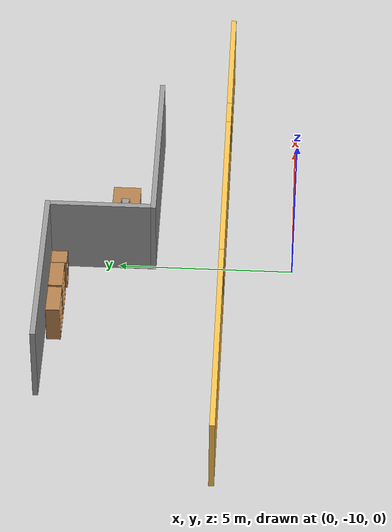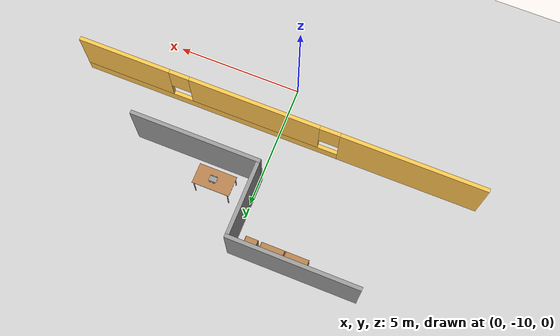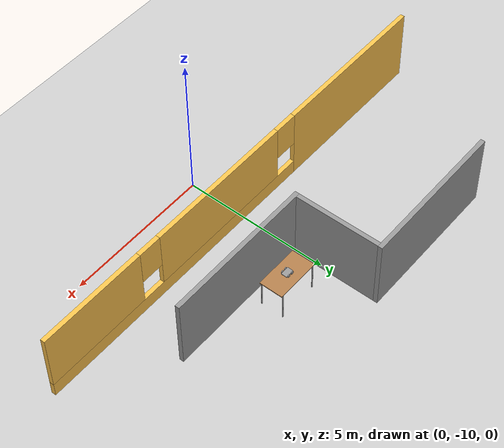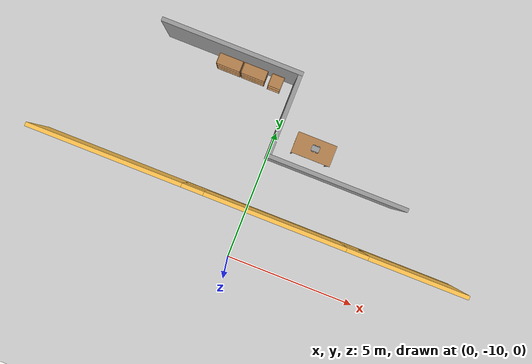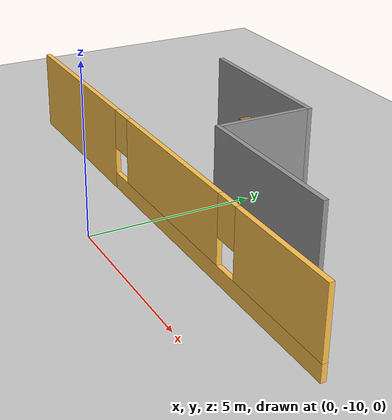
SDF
<sdf version="1.7">
 <world name="default">
  <model name="ground_plane">
   <static>1</static>
   <link name="link">
    <collision name="collision">
     <geometry><plane><normal>0 0 1</normal><size>100 100</size></plane></geometry>
     <surface><friction><ode><mu>100</mu><mu2>50</mu2></ode></friction></surface>
    </collision>
    <visual name="visual">
     <cast_shadows>0</cast_shadows>
     <geometry><plane><normal>0 0 1</normal><size>100 100</size></plane></geometry>
     <material>
      <script><uri>file://media/materials/scripts/gazebo.material</uri><name>Gazebo/Grey</name></script>
     </material>
    </visual>
   </link>
  </model>
  <model name="basic_office">
   <link name="Wall_20">
    <pose>0 -8 0 0 -0 0</pose>
    <visual name="Wall_20_Visual_0">
     <pose>-5.2375 0 1.25 0 -0 0</pose>
     <geometry><box><size>5.675 0.15 2.5</size></box></geometry>
     <material>
      <script><uri>file://media/materials/scripts/gazebo.material</uri><name>Gazebo/Grey</name></script>
      <ambient>1 0.764706 0.305882 1</ambient>
      <shader type="pixel"/>
     </material>
     <meta><layer>0</layer></meta>
    </visual>
    <visual name="Wall_20_Visual_2">
     <pose>1.00413 0 1.5 0 -0 0</pose>
     <geometry><box><size>5.20827 0.15 2</size></box></geometry>
     <material>
      <script><uri>file://media/materials/scripts/gazebo.material</uri><name>Gazebo/Grey</name></script>
      <ambient>1 0.764706 0.305882 1</ambient>
      <shader type="pixel"/>
     </material>
     <meta><layer>0</layer></meta>
    </visual>
    <visual name="Wall_20_Visual_1">
     <pose>2.8375 0 0.25 0 -0 0</pose>
     <geometry><box><size>10.475 0.15 0.5</size></box></geometry>
     <material>
      <script><uri>file://media/materials/scripts/gazebo.material</uri><name>Gazebo/Grey</name></script>
      <ambient>1 0.764706 0.305882 1</ambient>
      <shader type="pixel"/>
     </material>
     <meta><layer>0</layer></meta>
    </visual>
    <visual name="Wall_20_Visual_4">
     <pose>-2 0 1.9 0 -0 0</pose>
     <geometry><box><size>0.8 0.15 1.2</size></box></geometry>
     <material>
      <script><uri>file://media/materials/scripts/gazebo.material</uri><name>Gazebo/Grey</name></script>
      <ambient>1 0.764706 0.305882 1</ambient>
      <shader type="pixel"/>
     </material>
     <meta><layer>0</layer></meta>
    </visual>
    <visual name="Wall_20_Visual_3">
     <pose>6.24163 0 1.5 0 -0 0</pose>
     <geometry><box><size>3.66673 0.15 2</size></box></geometry>
     <material>
      <script><uri>file://media/materials/scripts/gazebo.material</uri><name>Gazebo/Grey</name></script>
      <ambient>1 0.764706 0.305882 1</ambient>
      <shader type="pixel"/>
     </material>
     <meta><layer>0</layer></meta>
    </visual>
    <visual name="Wall_20_Visual_5">
     <pose>4.00827 0 1.9 0 -0 0</pose>
     <geometry><box><size>0.8 0.15 1.2</size></box></geometry>
     <material>
      <script><uri>file://media/materials/scripts/gazebo.material</uri><name>Gazebo/Grey</name></script>
      <ambient>1 0.764706 0.305882 1</ambient>
      <shader type="pixel"/>
     </material>
     <meta><layer>0</layer></meta>
    </visual>
    <collision name="Wall_20_Collision_3">
     <pose>6.24163 0 1.5 0 -0 0</pose>
     <geometry><box><size>3.66673 0.15 2</size></box></geometry>
     <surface>
      <friction>
       <ode><mu>1</mu><mu2>1</mu2><fdir1>0 0 0</fdir1><slip1>0</slip1><slip2>0</slip2></ode>
       <torsional>
        <coefficient>1</coefficient>
        <patch_radius>0</patch_radius>
        <surface_radius>0</surface_radius>
        <use_patch_radius>1</use_patch_radius>
        <ode><slip>0</slip></ode>
       </torsional>
      </friction>
      <bounce><restitution_coefficient>0</restitution_coefficient><threshold>1e+06</threshold></bounce>
      <contact>
       <collide_without_contact>0</collide_without_contact>
       <collide_without_contact_bitmask>1</collide_without_contact_bitmask>
       <collide_bitmask>1</collide_bitmask>
       <ode>
        <soft_cfm>0</soft_cfm>
        <soft_erp>0.2</soft_erp>
        <kp>1e+13</kp>
        <kd>1</kd>
        <max_vel>0.01</max_vel>
        <min_depth>0</min_depth>
       </ode>
       <bullet>
        <split_impulse>1</split_impulse>
        <split_impulse_penetration_threshold>-0.01</split_impulse_penetration_threshold>
        <soft_cfm>0</soft_cfm>
        <soft_erp>0.2</soft_erp>
        <kp>1e+13</kp>
        <kd>1</kd>
       </bullet>
      </contact>
     </surface>
    </collision>
    <collision name="Wall_20_Collision_4">
     <pose>-2 0 1.9 0 -0 0</pose>
     <geometry><box><size>0.8 0.15 1.2</size></box></geometry>
     <surface>
      <friction>
       <ode><mu>1</mu><mu2>1</mu2><fdir1>0 0 0</fdir1><slip1>0</slip1><slip2>0</slip2></ode>
       <torsional>
        <coefficient>1</coefficient>
        <patch_radius>0</patch_radius>
        <surface_radius>0</surface_radius>
        <use_patch_radius>1</use_patch_radius>
        <ode><slip>0</slip></ode>
       </torsional>
      </friction>
      <bounce><restitution_coefficient>0</restitution_coefficient><threshold>1e+06</threshold></bounce>
      <contact>
       <collide_without_contact>0</collide_without_contact>
       <collide_without_contact_bitmask>1</collide_without_contact_bitmask>
       <collide_bitmask>1</collide_bitmask>
       <ode>
        <soft_cfm>0</soft_cfm>
        <soft_erp>0.2</soft_erp>
        <kp>1e+13</kp>
        <kd>1</kd>
        <max_vel>0.01</max_vel>
        <min_depth>0</min_depth>
       </ode>
       <bullet>
        <split_impulse>1</split_impulse>
        <split_impulse_penetration_threshold>-0.01</split_impulse_penetration_threshold>
        <soft_cfm>0</soft_cfm>
        <soft_erp>0.2</soft_erp>
        <kp>1e+13</kp>
        <kd>1</kd>
       </bullet>
      </contact>
     </surface>
    </collision>
    <collision name="Wall_20_Collision_5">
     <pose>4.00827 0 1.9 0 -0 0</pose>
     <geometry><box><size>0.8 0.15 1.2</size></box></geometry>
     <surface>
      <friction>
       <ode><mu>1</mu><mu2>1</mu2><fdir1>0 0 0</fdir1><slip1>0</slip1><slip2>0</slip2></ode>
       <torsional>
        <coefficient>1</coefficient>
        <patch_radius>0</patch_radius>
        <surface_radius>0</surface_radius>
        <use_patch_radius>1</use_patch_radius>
        <ode><slip>0</slip></ode>
       </torsional>
      </friction>
      <bounce><restitution_coefficient>0</restitution_coefficient><threshold>1e+06</threshold></bounce>
      <contact>
       <collide_without_contact>0</collide_without_contact>
       <collide_without_contact_bitmask>1</collide_without_contact_bitmask>
       <collide_bitmask>1</collide_bitmask>
       <ode>
        <soft_cfm>0</soft_cfm>
        <soft_erp>0.2</soft_erp>
        <kp>1e+13</kp>
        <kd>1</kd>
        <max_vel>0.01</max_vel>
        <min_depth>0</min_depth>
       </ode>
       <bullet>
        <split_impulse>1</split_impulse>
        <split_impulse_penetration_threshold>-0.01</split_impulse_penetration_threshold>
        <soft_cfm>0</soft_cfm>
        <soft_erp>0.2</soft_erp>
        <kp>1e+13</kp>
        <kd>1</kd>
       </bullet>
      </contact>
     </surface>
    </collision>
    <collision name="Wall_20_Collision_2">
     <pose>1.00413 0 1.5 0 -0 0</pose>
     <geometry><box><size>5.20827 0.15 2</size></box></geometry>
     <surface>
      <friction>
       <ode><mu>1</mu><mu2>1</mu2><fdir1>0 0 0</fdir1><slip1>0</slip1><slip2>0</slip2></ode>
       <torsional>
        <coefficient>1</coefficient>
        <patch_radius>0</patch_radius>
        <surface_radius>0</surface_radius>
        <use_patch_radius>1</use_patch_radius>
        <ode><slip>0</slip></ode>
       </torsional>
      </friction>
      <bounce><restitution_coefficient>0</restitution_coefficient><threshold>1e+06</threshold></bounce>
      <contact>
       <collide_without_contact>0</collide_without_contact>
       <collide_without_contact_bitmask>1</collide_without_contact_bitmask>
       <collide_bitmask>1</collide_bitmask>
       <ode>
        <soft_cfm>0</soft_cfm>
        <soft_erp>0.2</soft_erp>
        <kp>1e+13</kp>
        <kd>1</kd>
        <max_vel>0.01</max_vel>
        <min_depth>0</min_depth>
       </ode>
       <bullet>
        <split_impulse>1</split_impulse>
        <split_impulse_penetration_threshold>-0.01</split_impulse_penetration_threshold>
        <soft_cfm>0</soft_cfm>
        <soft_erp>0.2</soft_erp>
        <kp>1e+13</kp>
        <kd>1</kd>
       </bullet>
      </contact>
     </surface>
    </collision>
    <collision name="Wall_20_Collision_1">
     <pose>2.8375 0 0.25 0 -0 0</pose>
     <geometry><box><size>10.475 0.15 0.5</size></box></geometry>
     <surface>
      <friction>
       <ode><mu>1</mu><mu2>1</mu2><fdir1>0 0 0</fdir1><slip1>0</slip1><slip2>0</slip2></ode>
       <torsional>
        <coefficient>1</coefficient>
        <patch_radius>0</patch_radius>
        <surface_radius>0</surface_radius>
        <use_patch_radius>1</use_patch_radius>
        <ode><slip>0</slip></ode>
       </torsional>
      </friction>
      <bounce><restitution_coefficient>0</restitution_coefficient><threshold>1e+06</threshold></bounce>
      <contact>
       <collide_without_contact>0</collide_without_contact>
       <collide_without_contact_bitmask>1</collide_without_contact_bitmask>
       <collide_bitmask>1</collide_bitmask>
       <ode>
        <soft_cfm>0</soft_cfm>
        <soft_erp>0.2</soft_erp>
        <kp>1e+13</kp>
        <kd>1</kd>
        <max_vel>0.01</max_vel>
        <min_depth>0</min_depth>
       </ode>
       <bullet>
        <split_impulse>1</split_impulse>
        <split_impulse_penetration_threshold>-0.01</split_impulse_penetration_threshold>
        <soft_cfm>0</soft_cfm>
        <soft_erp>0.2</soft_erp>
        <kp>1e+13</kp>
        <kd>1</kd>
       </bullet>
      </contact>
     </surface>
    </collision>
    <collision name="Wall_20_Collision_0">
     <pose>-5.2375 0 1.25 0 -0 0</pose>
     <geometry><box><size>5.675 0.15 2.5</size></box></geometry>
     <surface>
      <friction>
       <ode><mu>1</mu><mu2>1</mu2><fdir1>0 0 0</fdir1><slip1>0</slip1><slip2>0</slip2></ode>
       <torsional>
        <coefficient>1</coefficient>
        <patch_radius>0</patch_radius>
        <surface_radius>0</surface_radius>
        <use_patch_radius>1</use_patch_radius>
        <ode><slip>0</slip></ode>
       </torsional>
      </friction>
      <bounce><restitution_coefficient>0</restitution_coefficient><threshold>1e+06</threshold></bounce>
      <contact>
       <collide_without_contact>0</collide_without_contact>
       <collide_without_contact_bitmask>1</collide_without_contact_bitmask>
       <collide_bitmask>1</collide_bitmask>
       <ode>
        <soft_cfm>0</soft_cfm>
        <soft_erp>0.2</soft_erp>
        <kp>1e+13</kp>
        <kd>1</kd>
        <max_vel>0.01</max_vel>
        <min_depth>0</min_depth>
       </ode>
       <bullet>
        <split_impulse>1</split_impulse>
        <split_impulse_penetration_threshold>-0.01</split_impulse_penetration_threshold>
        <soft_cfm>0</soft_cfm>
        <soft_erp>0.2</soft_erp>
        <kp>1e+13</kp>
        <kd>1</kd>
       </bullet>
      </contact>
     </surface>
    </collision>
   </link>
   <link name="Wall_27">
    <pose>0 -4.5 0 0 0 -1.5708</pose>
    <inertial>
     <mass>1</mass>
     <inertia><ixx>1</ixx><ixy>0</ixy><ixz>0</ixz><iyy>1</iyy><iyz>0</iyz><izz>1</izz></inertia>
    </inertial>
    <visual name="Wall_27_Visual">
     <pose>0 0 1.25 0 -0 0</pose>
     <geometry><box><size>2.85 0.15 2.5</size></box></geometry>
     <material>
      <script><uri>file://media/materials/scripts/gazebo.material</uri><name>Gazebo/Grey</name></script>
      <ambient>0.18 0.204 0.212 1</ambient>
      <shader type="pixel"><normal_map>__default__</normal_map></shader>
      <diffuse>0.7 0.7 0.7 1</diffuse>
      <specular>0.01 0.01 0.01 1</specular>
      <emissive>0 0 0 1</emissive>
     </material>
     <meta><layer>0</layer></meta>
    </visual>
    <collision name="Wall_27_Collision">
     <pose>0 0 1.25 0 -0 0</pose>
     <geometry><box><size>2.85 0.15 2.5</size></box></geometry>
     <surface>
      <friction>
       <ode><mu>1</mu><mu2>1</mu2><fdir1>0 0 0</fdir1><slip1>0</slip1><slip2>0</slip2></ode>
       <torsional>
        <coefficient>1</coefficient>
        <patch_radius>0</patch_radius>
        <surface_radius>0</surface_radius>
        <use_patch_radius>1</use_patch_radius>
        <ode><slip>0</slip></ode>
       </torsional>
      </friction>
      <bounce><restitution_coefficient>0</restitution_coefficient><threshold>1e+06</threshold></bounce>
      <contact>
       <collide_without_contact>0</collide_without_contact>
       <collide_without_contact_bitmask>1</collide_without_contact_bitmask>
       <collide_bitmask>1</collide_bitmask>
       <ode>
        <soft_cfm>0</soft_cfm>
        <soft_erp>0.2</soft_erp>
        <kp>1e+13</kp>
        <kd>1</kd>
        <max_vel>0.01</max_vel>
        <min_depth>0</min_depth>
       </ode>
       <bullet>
        <split_impulse>1</split_impulse>
        <split_impulse_penetration_threshold>-0.01</split_impulse_penetration_threshold>
        <soft_cfm>0</soft_cfm>
        <soft_erp>0.2</soft_erp>
        <kp>1e+13</kp>
        <kd>1</kd>
       </bullet>
      </contact>
     </surface>
    </collision>
   </link>
   <link name="Wall_36">
    <pose>2.5 -6 0 0 -0 0</pose>
    <visual name="Wall_36_Visual">
     <pose>0 0 1.25 0 -0 0</pose>
     <geometry><box><size>5.15 0.15 2.5</size></box></geometry>
     <material>
      <script><uri>file://media/materials/scripts/gazebo.material</uri><name>Gazebo/Grey</name></script>
      <ambient>0.180392 0.203922 0.211765 1</ambient>
      <shader type="pixel"/>
     </material>
     <meta><layer>0</layer></meta>
    </visual>
    <collision name="Wall_36_Collision">
     <pose>0 0 1.25 0 -0 0</pose>
     <geometry><box><size>5.15 0.15 2.5</size></box></geometry>
     <surface>
      <friction>
       <ode><mu>1</mu><mu2>1</mu2><fdir1>0 0 0</fdir1><slip1>0</slip1><slip2>0</slip2></ode>
       <torsional>
        <coefficient>1</coefficient>
        <patch_radius>0</patch_radius>
        <surface_radius>0</surface_radius>
        <use_patch_radius>1</use_patch_radius>
        <ode><slip>0</slip></ode>
       </torsional>
      </friction>
      <bounce><restitution_coefficient>0</restitution_coefficient><threshold>1e+06</threshold></bounce>
      <contact>
       <collide_without_contact>0</collide_without_contact>
       <collide_without_contact_bitmask>1</collide_without_contact_bitmask>
       <collide_bitmask>1</collide_bitmask>
       <ode>
        <soft_cfm>0</soft_cfm>
        <soft_erp>0.2</soft_erp>
        <kp>1e+13</kp>
        <kd>1</kd>
        <max_vel>0.01</max_vel>
        <min_depth>0</min_depth>
       </ode>
       <bullet>
        <split_impulse>1</split_impulse>
        <split_impulse_penetration_threshold>-0.01</split_impulse_penetration_threshold>
        <soft_cfm>0</soft_cfm>
        <soft_erp>0.2</soft_erp>
        <kp>1e+13</kp>
        <kd>1</kd>
       </bullet>
      </contact>
     </surface>
    </collision>
   </link>
   <link name="Wall_38">
    <pose>-2.5 -3 0 0 -0 3.14159</pose>
    <inertial>
     <mass>1</mass>
     <inertia><ixx>1</ixx><ixy>0</ixy><ixz>0</ixz><iyy>1</iyy><iyz>0</iyz><izz>1</izz></inertia>
    </inertial>
    <visual name="Wall_38_Visual">
     <pose>0 0 1.25 0 -0 0</pose>
     <geometry><box><size>5.15 0.15 2.5</size></box></geometry>
     <material>
      <script><uri>file://media/materials/scripts/gazebo.material</uri><name>Gazebo/Grey</name></script>
      <ambient>0.18 0.204 0.212 1</ambient>
      <shader type="pixel"><normal_map>__default__</normal_map></shader>
     </material>
     <meta><layer>0</layer></meta>
    </visual>
    <collision name="Wall_38_Collision">
     <pose>0 0 1.25 0 -0 0</pose>
     <geometry><box><size>5.15 0.15 2.5</size></box></geometry>
     <surface>
      <friction>
       <ode><mu>1</mu><mu2>1</mu2><fdir1>0 0 0</fdir1><slip1>0</slip1><slip2>0</slip2></ode>
       <torsional>
        <coefficient>1</coefficient>
        <patch_radius>0</patch_radius>
        <surface_radius>0</surface_radius>
        <use_patch_radius>1</use_patch_radius>
        <ode><slip>0</slip></ode>
       </torsional>
      </friction>
      <bounce><restitution_coefficient>0</restitution_coefficient><threshold>1e+06</threshold></bounce>
      <contact>
       <collide_without_contact>0</collide_without_contact>
       <collide_without_contact_bitmask>1</collide_without_contact_bitmask>
       <collide_bitmask>1</collide_bitmask>
       <ode>
        <soft_cfm>0</soft_cfm>
        <soft_erp>0.2</soft_erp>
        <kp>1e+13</kp>
        <kd>1</kd>
        <max_vel>0.01</max_vel>
        <min_depth>0</min_depth>
       </ode>
       <bullet>
        <split_impulse>1</split_impulse>
        <split_impulse_penetration_threshold>-0.01</split_impulse_penetration_threshold>
        <soft_cfm>0</soft_cfm>
        <soft_erp>0.2</soft_erp>
        <kp>1e+13</kp>
        <kd>1</kd>
       </bullet>
      </contact>
     </surface>
    </collision>
   </link>
   <static>1</static>
  </model>
  <model name="cabinet">
   <static>1</static>
   <link name="cabinet_bottom_plate">
    <inertial>
     <pose>0 0 -1 0 -0 0</pose>
     <inertia><ixx>2.05</ixx><ixy>0</ixy><ixz>0</ixz><iyy>2.05</iyy><iyz>0</iyz><izz>2.05</izz></inertia>
     <mass>25</mass>
    </inertial>
    <collision name="cabinet_bottom_plate_geom">
     <pose>0 0 0.01 0 -0 0</pose>
     <geometry><box><size>0.45 0.45 0.02</size></box></geometry>
    </collision>
    <visual name="cabinet_bottom_plate_geom_visual">
     <pose>0 0 0.01 0 -0 0</pose>
     <geometry><box><size>0.45 0.45 0.02</size></box></geometry>
     <material>
      <script><uri>file://media/materials/scripts/gazebo.material</uri><name>Gazebo/Wood</name></script>
     </material>
    </visual>
    <collision name="cabinet_bottom_plate_geom_cabinet_back_plate">
     <pose>0.235 0 0.51 0 -0 0</pose>
     <geometry><box><size>0.02 0.45 1.02</size></box></geometry>
    </collision>
    <visual name="cabinet_bottom_plate_geom_cabinet_back_plate_visual">
     <pose>0.235 0 0.51 0 -0 0</pose>
     <geometry><box><size>0.02 0.45 1.02</size></box></geometry>
     <material>
      <script><uri>file://media/materials/scripts/gazebo.material</uri><name>Gazebo/Wood</name></script>
     </material>
    </visual>
    <collision name="cabinet_bottom_plate_geom_cabinet_left_plate">
     <pose>0 0.235 0.51 0 -0 0</pose>
     <geometry><box><size>0.45 0.02 1.02</size></box></geometry>
    </collision>
    <visual name="cabinet_bottom_plate_geom_cabinet_left_plate_visual">
     <pose>0 0.235 0.51 0 -0 0</pose>
     <geometry><box><size>0.45 0.02 1.02</size></box></geometry>
     <material>
      <script><uri>file://media/materials/scripts/gazebo.material</uri><name>Gazebo/Wood</name></script>
     </material>
    </visual>
    <collision name="cabinet_bottom_plate_geom_cabinet_middle_plate">
     <pose>0 0 0.51 0 -0 0</pose>
     <geometry><box><size>0.45 0.45 0.02</size></box></geometry>
    </collision>
    <visual name="cabinet_bottom_plate_geom_cabinet_middle_plate_visual">
     <pose>0 0 0.51 0 -0 0</pose>
     <geometry><box><size>0.45 0.45 0.02</size></box></geometry>
     <material>
      <script><uri>file://media/materials/scripts/gazebo.material</uri><name>Gazebo/Wood</name></script>
     </material>
    </visual>
    <collision name="cabinet_bottom_plate_geom_cabinet_right_plate">
     <pose>0 -0.235 0.51 0 -0 0</pose>
     <geometry><box><size>0.45 0.02 1.02</size></box></geometry>
    </collision>
    <visual name="cabinet_bottom_plate_geom_cabinet_right_plate_visual">
     <pose>0 -0.235 0.51 0 -0 0</pose>
     <geometry><box><size>0.45 0.02 1.02</size></box></geometry>
     <material>
      <script><uri>file://media/materials/scripts/gazebo.material</uri><name>Gazebo/Wood</name></script>
     </material>
    </visual>
    <collision name="cabinet_bottom_plate_geom_cabinet_top_plate">
     <pose>0 0 1.01 0 -0 0</pose>
     <geometry><box><size>0.45 0.45 0.02</size></box></geometry>
    </collision>
    <visual name="cabinet_bottom_plate_geom_cabinet_top_plate_visual">
     <pose>0 0 1.01 0 -0 0</pose>
     <geometry><box><size>0.45 0.45 0.02</size></box></geometry>
     <material>
      <script><uri>file://media/materials/scripts/gazebo.material</uri><name>Gazebo/Wood</name></script>
     </material>
    </visual>
   </link>
   <pose>-0.7 -3.35 0 0 -0 1.5708</pose>
  </model>
  <model name="bookshelf_clone_0">
   <static>1</static>
   <link name="link">
    <inertial><mass>1</mass></inertial>
    <collision name="back">
     <pose>0 0.005 0.6 0 -0 0</pose>
     <geometry><box><size>0.9 0.01 1.2</size></box></geometry>
    </collision>
    <visual name="visual1">
     <pose>0 0.005 0.6 0 -0 0</pose>
     <geometry><box><size>0.9 0.01 1.2</size></box></geometry>
     <material>
      <script><uri>file://media/materials/scripts/gazebo.material</uri><name>Gazebo/Wood</name></script>
     </material>
    </visual>
    <collision name="left_side">
     <pose>0.45 -0.195 0.6 0 -0 0</pose>
     <geometry><box><size>0.02 0.4 1.2</size></box></geometry>
    </collision>
    <visual name="visual2">
     <pose>0.45 -0.195 0.6 0 -0 0</pose>
     <geometry><box><size>0.02 0.4 1.2</size></box></geometry>
     <material>
      <script><uri>file://media/materials/scripts/gazebo.material</uri><name>Gazebo/Wood</name></script>
     </material>
    </visual>
    <collision name="right_side">
     <pose>-0.45 -0.195 0.6 0 -0 0</pose>
     <geometry><box><size>0.02 0.4 1.2</size></box></geometry>
    </collision>
    <visual name="visual3">
     <pose>-0.45 -0.195 0.6 0 -0 0</pose>
     <geometry><box><size>0.02 0.4 1.2</size></box></geometry>
     <material>
      <script><uri>file://media/materials/scripts/gazebo.material</uri><name>Gazebo/Wood</name></script>
     </material>
    </visual>
    <collision name="bottom">
     <pose>0 -0.195 0.03 0 -0 0</pose>
     <geometry><box><size>0.88 0.4 0.06</size></box></geometry>
    </collision>
    <visual name="visual4">
     <pose>0 -0.195 0.03 0 -0 0</pose>
     <geometry><box><size>0.88 0.4 0.06</size></box></geometry>
     <material>
      <script><uri>file://media/materials/scripts/gazebo.material</uri><name>Gazebo/Wood</name></script>
     </material>
    </visual>
    <collision name="top">
     <pose>0 -0.195 1.19 0 -0 0</pose>
     <geometry><box><size>0.88 0.4 0.02</size></box></geometry>
    </collision>
    <visual name="visual5">
     <pose>0 -0.195 1.19 0 -0 0</pose>
     <geometry><box><size>0.88 0.4 0.02</size></box></geometry>
     <material>
      <script><uri>file://media/materials/scripts/gazebo.material</uri><name>Gazebo/Wood</name></script>
     </material>
    </visual>
    <collision name="low_shelf">
     <pose>0 -0.195 0.43 0 -0 0</pose>
     <geometry><box><size>0.88 0.4 0.02</size></box></geometry>
    </collision>
    <visual name="visual6">
     <pose>0 -0.195 0.43 0 -0 0</pose>
     <geometry><box><size>0.88 0.4 0.02</size></box></geometry>
     <material>
      <script><uri>file://media/materials/scripts/gazebo.material</uri><name>Gazebo/Wood</name></script>
     </material>
    </visual>
    <collision name="high_shelf">
     <pose>0 -0.195 0.8 0 -0 0</pose>
     <geometry><box><size>0.88 0.4 0.02</size></box></geometry>
    </collision>
    <visual name="visual7">
     <pose>0 -0.195 0.8 0 -0 0</pose>
     <geometry><box><size>0.88 0.4 0.02</size></box></geometry>
     <material>
      <script><uri>file://media/materials/scripts/gazebo.material</uri><name>Gazebo/Wood</name></script>
     </material>
    </visual>
   </link>
   <pose>-2.5 -3.14159 0 0 -0 0</pose>
  </model>
  <model name="bookshelf_clone_0_clone">
   <static>1</static>
   <link name="link">
    <inertial><mass>1</mass></inertial>
    <collision name="back">
     <pose>0 0.005 0.6 0 -0 0</pose>
     <geometry><box><size>0.9 0.01 1.2</size></box></geometry>
    </collision>
    <visual name="visual1">
     <pose>0 0.005 0.6 0 -0 0</pose>
     <geometry><box><size>0.9 0.01 1.2</size></box></geometry>
     <material>
      <script><uri>file://media/materials/scripts/gazebo.material</uri><name>Gazebo/Wood</name></script>
     </material>
    </visual>
    <collision name="left_side">
     <pose>0.45 -0.195 0.6 0 -0 0</pose>
     <geometry><box><size>0.02 0.4 1.2</size></box></geometry>
    </collision>
    <visual name="visual2">
     <pose>0.45 -0.195 0.6 0 -0 0</pose>
     <geometry><box><size>0.02 0.4 1.2</size></box></geometry>
     <material>
      <script><uri>file://media/materials/scripts/gazebo.material</uri><name>Gazebo/Wood</name></script>
     </material>
    </visual>
    <collision name="right_side">
     <pose>-0.45 -0.195 0.6 0 -0 0</pose>
     <geometry><box><size>0.02 0.4 1.2</size></box></geometry>
    </collision>
    <visual name="visual3">
     <pose>-0.45 -0.195 0.6 0 -0 0</pose>
     <geometry><box><size>0.02 0.4 1.2</size></box></geometry>
     <material>
      <script><uri>file://media/materials/scripts/gazebo.material</uri><name>Gazebo/Wood</name></script>
     </material>
    </visual>
    <collision name="bottom">
     <pose>0 -0.195 0.03 0 -0 0</pose>
     <geometry><box><size>0.88 0.4 0.06</size></box></geometry>
    </collision>
    <visual name="visual4">
     <pose>0 -0.195 0.03 0 -0 0</pose>
     <geometry><box><size>0.88 0.4 0.06</size></box></geometry>
     <material>
      <script><uri>file://media/materials/scripts/gazebo.material</uri><name>Gazebo/Wood</name></script>
     </material>
    </visual>
    <collision name="top">
     <pose>0 -0.195 1.19 0 -0 0</pose>
     <geometry><box><size>0.88 0.4 0.02</size></box></geometry>
    </collision>
    <visual name="visual5">
     <pose>0 -0.195 1.19 0 -0 0</pose>
     <geometry><box><size>0.88 0.4 0.02</size></box></geometry>
     <material>
      <script><uri>file://media/materials/scripts/gazebo.material</uri><name>Gazebo/Wood</name></script>
     </material>
    </visual>
    <collision name="low_shelf">
     <pose>0 -0.195 0.43 0 -0 0</pose>
     <geometry><box><size>0.88 0.4 0.02</size></box></geometry>
    </collision>
    <visual name="visual6">
     <pose>0 -0.195 0.43 0 -0 0</pose>
     <geometry><box><size>0.88 0.4 0.02</size></box></geometry>
     <material>
      <script><uri>file://media/materials/scripts/gazebo.material</uri><name>Gazebo/Wood</name></script>
     </material>
    </visual>
    <collision name="high_shelf">
     <pose>0 -0.195 0.8 0 -0 0</pose>
     <geometry><box><size>0.88 0.4 0.02</size></box></geometry>
    </collision>
    <visual name="visual7">
     <pose>0 -0.195 0.8 0 -0 0</pose>
     <geometry><box><size>0.88 0.4 0.02</size></box></geometry>
     <material>
      <script><uri>file://media/materials/scripts/gazebo.material</uri><name>Gazebo/Wood</name></script>
     </material>
    </visual>
   </link>
   <pose>-1.55 -3.14159 0 0 -0 0</pose>
  </model>
  <model name="table_clone">
   <static>1</static>
   <link name="link">
    <collision name="surface">
     <pose>0 0 1 0 -0 0</pose>
     <geometry><box><size>1.5 0.8 0.03</size></box></geometry>
     <surface><friction><ode><mu>0.6</mu><mu2>0.6</mu2></ode></friction></surface>
    </collision>
    <visual name="visual1">
     <pose>0 0 1 0 -0 0</pose>
     <geometry><box><size>1.5 0.8 0.03</size></box></geometry>
     <material>
      <script><uri>file://media/materials/scripts/gazebo.material</uri><name>Gazebo/Wood</name></script>
     </material>
    </visual>
    <collision name="front_left_leg_0">
     <pose>0.68 0.38 0.5 0 -0 0</pose>
     <geometry><cylinder><radius>0.02</radius><length>1</length></cylinder></geometry>
    </collision>
    <visual name="front_left_leg">
     <pose>0.68 0.38 0.5 0 -0 0</pose>
     <geometry><cylinder><radius>0.02</radius><length>1</length></cylinder></geometry>
     <material>
      <script><uri>file://media/materials/scripts/gazebo.material</uri><name>Gazebo/Grey</name></script>
     </material>
    </visual>
    <collision name="front_right_leg_0">
     <pose>0.68 -0.38 0.5 0 -0 0</pose>
     <geometry><cylinder><radius>0.02</radius><length>1</length></cylinder></geometry>
    </collision>
    <visual name="front_right_leg">
     <pose>0.68 -0.38 0.5 0 -0 0</pose>
     <geometry><cylinder><radius>0.02</radius><length>1</length></cylinder></geometry>
     <material>
      <script><uri>file://media/materials/scripts/gazebo.material</uri><name>Gazebo/Grey</name></script>
     </material>
    </visual>
    <collision name="back_right_leg_0">
     <pose>-0.68 -0.38 0.5 0 -0 0</pose>
     <geometry><cylinder><radius>0.02</radius><length>1</length></cylinder></geometry>
    </collision>
    <visual name="back_right_leg">
     <pose>-0.68 -0.38 0.5 0 -0 0</pose>
     <geometry><cylinder><radius>0.02</radius><length>1</length></cylinder></geometry>
     <material>
      <script><uri>file://media/materials/scripts/gazebo.material</uri><name>Gazebo/Grey</name></script>
     </material>
    </visual>
    <collision name="back_left_leg_0">
     <pose>-0.68 0.38 0.5 0 -0 0</pose>
     <geometry><cylinder><radius>0.02</radius><length>1</length></cylinder></geometry>
    </collision>
    <visual name="back_left_leg">
     <pose>-0.68 0.38 0.5 0 -0 0</pose>
     <geometry><cylinder><radius>0.02</radius><length>1</length></cylinder></geometry>
     <material>
      <script><uri>file://media/materials/scripts/gazebo.material</uri><name>Gazebo/Grey</name></script>
     </material>
    </visual>
   </link>
   <pose>1.4653 -5.12135 0 0 -0 0</pose>
  </model>
  <model name="fw_robot_0">
   <link name="link_0_clone">
    <inertial>
     <mass>1</mass>
     <inertia>
      <ixx>0.166667</ixx>
      <ixy>0</ixy>
      <ixz>0</ixz>
      <iyy>0.166667</iyy>
      <iyz>0</iyz>
      <izz>0.166667</izz>
     </inertia>
    </inertial>
    <pose>0 0 0.05 0 -0 0</pose>
    <visual name="visual">
     <geometry><box><size>0.3 0.2 0.02</size></box></geometry>
     <material>
      <lighting>1</lighting>
      <script><uri>file://media/materials/scripts/gazebo.material</uri><name>Gazebo/Grey</name></script>
      <shader type="pixel"><normal_map>__default__</normal_map></shader>
      <ambient>0.3 0.3 0.3 1</ambient>
      <diffuse>0.7 0.7 0.7 1</diffuse>
      <specular>0.01 0.01 0.01 1</specular>
      <emissive>0 0 0 1</emissive>
     </material>
    </visual>
    <collision name="collision_1">
     <geometry><box><size>0.3 0.2 0.02</size></box></geometry>
     <surface>
      <friction>
       <ode><mu>1</mu><mu2>1</mu2><fdir1>0 0 0</fdir1><slip1>0</slip1><slip2>0</slip2></ode>
       <torsional>
        <coefficient>1</coefficient>
        <patch_radius>0</patch_radius>
        <surface_radius>0</surface_radius>
        <use_patch_radius>1</use_patch_radius>
        <ode><slip>0</slip></ode>
       </torsional>
      </friction>
      <bounce><restitution_coefficient>0</restitution_coefficient><threshold>1e+06</threshold></bounce>
      <contact>
       <collide_without_contact>0</collide_without_contact>
       <collide_without_contact_bitmask>1</collide_without_contact_bitmask>
       <collide_bitmask>1</collide_bitmask>
       <ode>
        <soft_cfm>0</soft_cfm>
        <soft_erp>0.2</soft_erp>
        <kp>1e+13</kp>
        <kd>1</kd>
        <max_vel>0.01</max_vel>
        <min_depth>0</min_depth>
       </ode>
       <bullet>
        <split_impulse>1</split_impulse>
        <split_impulse_penetration_threshold>-0.01</split_impulse_penetration_threshold>
        <soft_cfm>0</soft_cfm>
        <soft_erp>0.2</soft_erp>
        <kp>1e+13</kp>
        <kd>1</kd>
       </bullet>
      </contact>
     </surface>
    </collision>
   </link>
   <link name="link_2_clone">
    <inertial>
     <mass>1</mass>
     <inertia><ixx>0.145833</ixx><ixy>0</ixy><ixz>0</ixz><iyy>0.145833</iyy><iyz>0</iyz><izz>0.125</izz></inertia>
    </inertial>
    <pose>-0.075 0.115 0.05 1.5708 -0 0</pose>
    <visual name="visual">
     <geometry><cylinder><radius>0.05</radius><length>0.03</length></cylinder></geometry>
     <material>
      <lighting>1</lighting>
      <script><uri>file://media/materials/scripts/gazebo.material</uri><name>Gazebo/Grey</name></script>
      <shader type="pixel"><normal_map>__default__</normal_map></shader>
      <ambient>0.3 0.3 0.3 1</ambient>
      <diffuse>0.7 0.7 0.7 1</diffuse>
      <specular>0.01 0.01 0.01 1</specular>
      <emissive>0 0 0 1</emissive>
     </material>
    </visual>
    <collision name="collision">
     <geometry><cylinder><radius>0.05</radius><length>0.03</length></cylinder></geometry>
     <surface>
      <friction>
       <ode><mu>1</mu><mu2>1</mu2><fdir1>0 0 0</fdir1><slip1>0</slip1><slip2>0</slip2></ode>
       <torsional>
        <coefficient>1</coefficient>
        <patch_radius>0</patch_radius>
        <surface_radius>0</surface_radius>
        <use_patch_radius>1</use_patch_radius>
        <ode><slip>0</slip></ode>
       </torsional>
      </friction>
      <bounce><restitution_coefficient>0</restitution_coefficient><threshold>1e+06</threshold></bounce>
      <contact>
       <collide_without_contact>0</collide_without_contact>
       <collide_without_contact_bitmask>1</collide_without_contact_bitmask>
       <collide_bitmask>1</collide_bitmask>
       <ode>
        <soft_cfm>0</soft_cfm>
        <soft_erp>0.2</soft_erp>
        <kp>1e+13</kp>
        <kd>1</kd>
        <max_vel>0.01</max_vel>
        <min_depth>0</min_depth>
       </ode>
       <bullet>
        <split_impulse>1</split_impulse>
        <split_impulse_penetration_threshold>-0.01</split_impulse_penetration_threshold>
        <soft_cfm>0</soft_cfm>
        <soft_erp>0.2</soft_erp>
        <kp>1e+13</kp>
        <kd>1</kd>
       </bullet>
      </contact>
     </surface>
    </collision>
   </link>
   <link name="link_2_clone_clone">
    <inertial>
     <mass>1</mass>
     <inertia><ixx>0.145833</ixx><ixy>0</ixy><ixz>0</ixz><iyy>0.145833</iyy><iyz>0</iyz><izz>0.125</izz></inertia>
    </inertial>
    <pose>-0.075 -0.115 0.05 1.5708 -0 0</pose>
    <visual name="visual">
     <geometry><cylinder><radius>0.05</radius><length>0.03</length></cylinder></geometry>
     <material>
      <lighting>1</lighting>
      <script><uri>file://media/materials/scripts/gazebo.material</uri><name>Gazebo/Grey</name></script>
      <shader type="pixel"><normal_map>__default__</normal_map></shader>
      <ambient>0.3 0.3 0.3 1</ambient>
      <diffuse>0.7 0.7 0.7 1</diffuse>
      <specular>0.01 0.01 0.01 1</specular>
      <emissive>0 0 0 1</emissive>
     </material>
    </visual>
    <collision name="collision">
     <geometry><cylinder><radius>0.05</radius><length>0.03</length></cylinder></geometry>
     <surface>
      <friction>
       <ode><mu>1</mu><mu2>1</mu2><fdir1>0 0 0</fdir1><slip1>0</slip1><slip2>0</slip2></ode>
       <torsional>
        <coefficient>1</coefficient>
        <patch_radius>0</patch_radius>
        <surface_radius>0</surface_radius>
        <use_patch_radius>1</use_patch_radius>
        <ode><slip>0</slip></ode>
       </torsional>
      </friction>
      <bounce><restitution_coefficient>0</restitution_coefficient><threshold>1e+06</threshold></bounce>
      <contact>
       <collide_without_contact>0</collide_without_contact>
       <collide_without_contact_bitmask>1</collide_without_contact_bitmask>
       <collide_bitmask>1</collide_bitmask>
       <ode>
        <soft_cfm>0</soft_cfm>
        <soft_erp>0.2</soft_erp>
        <kp>1e+13</kp>
        <kd>1</kd>
        <max_vel>0.01</max_vel>
        <min_depth>0</min_depth>
       </ode>
       <bullet>
        <split_impulse>1</split_impulse>
        <split_impulse_penetration_threshold>-0.01</split_impulse_penetration_threshold>
        <soft_cfm>0</soft_cfm>
        <soft_erp>0.2</soft_erp>
        <kp>1e+13</kp>
        <kd>1</kd>
       </bullet>
      </contact>
     </surface>
    </collision>
   </link>
   <link name="link_2_clone_clone_0">
    <inertial>
     <mass>1</mass>
     <inertia><ixx>0.145833</ixx><ixy>0</ixy><ixz>0</ixz><iyy>0.145833</iyy><iyz>0</iyz><izz>0.125</izz></inertia>
    </inertial>
    <pose>0.075 0.115 0.05 1.5708 -0 0</pose>
    <visual name="visual">
     <geometry><cylinder><radius>0.05</radius><length>0.03</length></cylinder></geometry>
     <material>
      <lighting>1</lighting>
      <script><uri>file://media/materials/scripts/gazebo.material</uri><name>Gazebo/Grey</name></script>
      <shader type="pixel"><normal_map>__default__</normal_map></shader>
      <ambient>0.3 0.3 0.3 1</ambient>
      <diffuse>0.7 0.7 0.7 1</diffuse>
      <specular>0.01 0.01 0.01 1</specular>
      <emissive>0 0 0 1</emissive>
     </material>
    </visual>
    <collision name="collision">
     <geometry><cylinder><radius>0.05</radius><length>0.03</length></cylinder></geometry>
     <surface>
      <friction>
       <ode><mu>1</mu><mu2>1</mu2><fdir1>0 0 0</fdir1><slip1>0</slip1><slip2>0</slip2></ode>
       <torsional>
        <coefficient>1</coefficient>
        <patch_radius>0</patch_radius>
        <surface_radius>0</surface_radius>
        <use_patch_radius>1</use_patch_radius>
        <ode><slip>0</slip></ode>
       </torsional>
      </friction>
      <bounce><restitution_coefficient>0</restitution_coefficient><threshold>1e+06</threshold></bounce>
      <contact>
       <collide_without_contact>0</collide_without_contact>
       <collide_without_contact_bitmask>1</collide_without_contact_bitmask>
       <collide_bitmask>1</collide_bitmask>
       <ode>
        <soft_cfm>0</soft_cfm>
        <soft_erp>0.2</soft_erp>
        <kp>1e+13</kp>
        <kd>1</kd>
        <max_vel>0.01</max_vel>
        <min_depth>0</min_depth>
       </ode>
       <bullet>
        <split_impulse>1</split_impulse>
        <split_impulse_penetration_threshold>-0.01</split_impulse_penetration_threshold>
        <soft_cfm>0</soft_cfm>
        <soft_erp>0.2</soft_erp>
        <kp>1e+13</kp>
        <kd>1</kd>
       </bullet>
      </contact>
     </surface>
    </collision>
   </link>
   <link name="link_2_clone_clone_1">
    <inertial>
     <mass>1</mass>
     <inertia><ixx>0.145833</ixx><ixy>0</ixy><ixz>0</ixz><iyy>0.145833</iyy><iyz>0</iyz><izz>0.125</izz></inertia>
    </inertial>
    <pose>0.075 -0.115 0.05 1.5708 -0 0</pose>
    <visual name="visual">
     <geometry><cylinder><radius>0.05</radius><length>0.03</length></cylinder></geometry>
     <material>
      <lighting>1</lighting>
      <script><uri>file://media/materials/scripts/gazebo.material</uri><name>Gazebo/Grey</name></script>
      <shader type="pixel"><normal_map>__default__</normal_map></shader>
      <ambient>0.3 0.3 0.3 1</ambient>
      <diffuse>0.7 0.7 0.7 1</diffuse>
      <specular>0.01 0.01 0.01 1</specular>
      <emissive>0 0 0 1</emissive>
     </material>
    </visual>
    <collision name="collision">
     <geometry><cylinder><radius>0.05</radius><length>0.03</length></cylinder></geometry>
     <surface>
      <friction>
       <ode><mu>1</mu><mu2>1</mu2><fdir1>0 0 0</fdir1><slip1>0</slip1><slip2>0</slip2></ode>
       <torsional>
        <coefficient>1</coefficient>
        <patch_radius>0</patch_radius>
        <surface_radius>0</surface_radius>
        <use_patch_radius>1</use_patch_radius>
        <ode><slip>0</slip></ode>
       </torsional>
      </friction>
      <bounce><restitution_coefficient>0</restitution_coefficient><threshold>1e+06</threshold></bounce>
      <contact>
       <collide_without_contact>0</collide_without_contact>
       <collide_without_contact_bitmask>1</collide_without_contact_bitmask>
       <collide_bitmask>1</collide_bitmask>
       <ode>
        <soft_cfm>0</soft_cfm>
        <soft_erp>0.2</soft_erp>
        <kp>1e+13</kp>
        <kd>1</kd>
        <max_vel>0.01</max_vel>
        <min_depth>0</min_depth>
       </ode>
       <bullet>
        <split_impulse>1</split_impulse>
        <split_impulse_penetration_threshold>-0.01</split_impulse_penetration_threshold>
        <soft_cfm>0</soft_cfm>
        <soft_erp>0.2</soft_erp>
        <kp>1e+13</kp>
        <kd>1</kd>
       </bullet>
      </contact>
     </surface>
    </collision>
   </link>
   <joint name="link_0_clone_JOINT_1" type="revolute">
    <parent>link_0_clone</parent>
    <child>link_2_clone_clone_0</child>
    <axis>
     <xyz>0 0 1</xyz>
     <limit>
      <lower>-1.79769e+308</lower>
      <upper>1.79769e+308</upper>
      <effort>-1</effort>
      <velocity>-1</velocity>
     </limit>
     <dynamics>
      <spring_reference>0</spring_reference>
      <spring_stiffness>0</spring_stiffness>
      <damping>0</damping>
     </dynamics>
    </axis>
    <physics>
     <ode><limit><cfm>0</cfm><erp>0.2</erp></limit><suspension><cfm>0</cfm><erp>0.2</erp></suspension></ode>
    </physics>
   </joint>
   <joint name="link_0_clone_JOINT_3" type="revolute">
    <parent>link_0_clone</parent>
    <child>link_2_clone</child>
    <axis>
     <xyz>0 0 1</xyz>
     <limit>
      <lower>-1.79769e+308</lower>
      <upper>1.79769e+308</upper>
      <effort>-1</effort>
      <velocity>-1</velocity>
     </limit>
     <dynamics>
      <spring_reference>0</spring_reference>
      <spring_stiffness>0</spring_stiffness>
      <damping>0</damping>
     </dynamics>
    </axis>
    <physics>
     <ode><limit><cfm>0</cfm><erp>0.2</erp></limit><suspension><cfm>0</cfm><erp>0.2</erp></suspension></ode>
    </physics>
   </joint>
   <joint name="link_0_clone_JOINT_4" type="revolute">
    <parent>link_0_clone</parent>
    <child>link_2_clone_clone</child>
    <axis>
     <xyz>0 0 1</xyz>
     <limit>
      <lower>-1.79769e+308</lower>
      <upper>1.79769e+308</upper>
      <effort>-1</effort>
      <velocity>-1</velocity>
     </limit>
     <dynamics>
      <spring_reference>0</spring_reference>
      <spring_stiffness>0</spring_stiffness>
      <damping>0</damping>
     </dynamics>
    </axis>
    <physics>
     <ode><limit><cfm>0</cfm><erp>0.2</erp></limit><suspension><cfm>0</cfm><erp>0.2</erp></suspension></ode>
    </physics>
   </joint>
   <joint name="link_0_clone_JOINT_5" type="revolute">
    <parent>link_0_clone</parent>
    <child>link_2_clone_clone_1</child>
    <axis>
     <xyz>0 0 1</xyz>
     <limit>
      <lower>-1.79769e+308</lower>
      <upper>1.79769e+308</upper>
      <effort>-1</effort>
      <velocity>-1</velocity>
     </limit>
     <dynamics>
      <spring_reference>0</spring_reference>
      <spring_stiffness>0</spring_stiffness>
      <damping>0</damping>
     </dynamics>
    </axis>
    <physics>
     <ode><limit><cfm>0</cfm><erp>0.2</erp></limit><suspension><cfm>0</cfm><erp>0.2</erp></suspension></ode>
    </physics>
   </joint>
   <static>0</static>
   <pose>1.5 -5.1 1.065 -2e-06 1e-06 -6.6e-05</pose>
  </model>
 </world>
</sdf>
